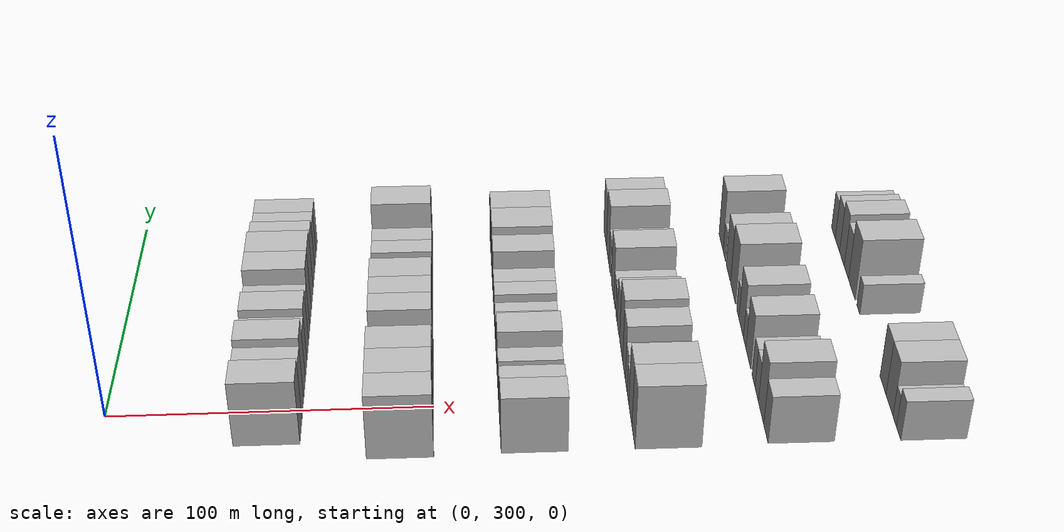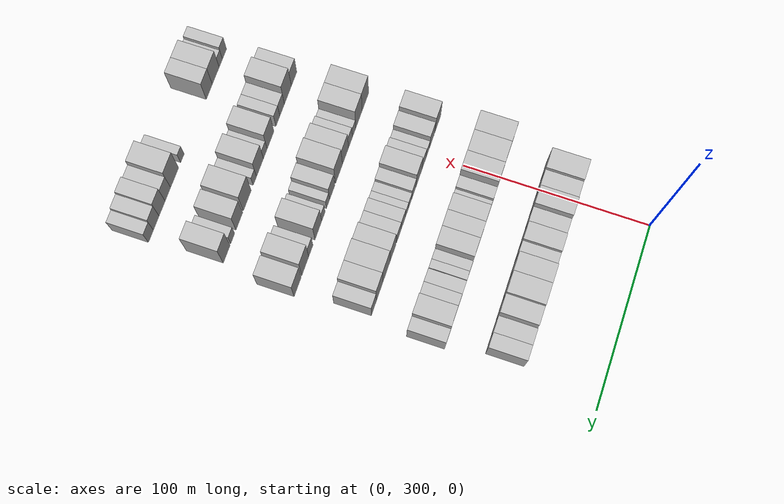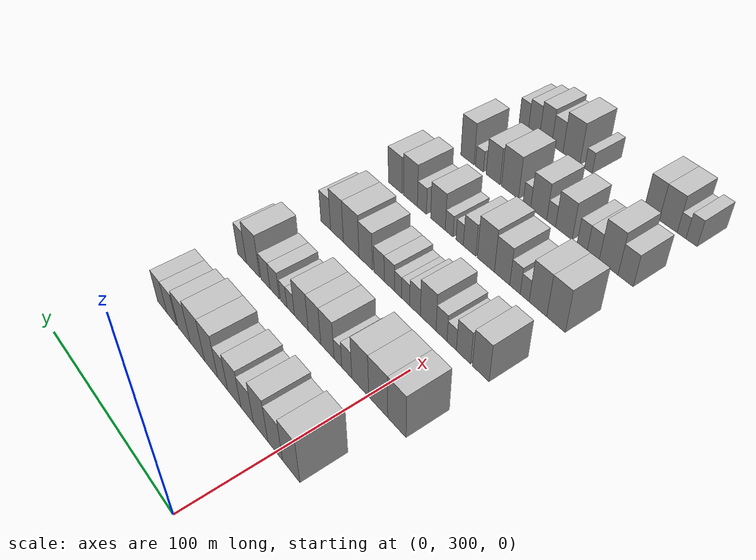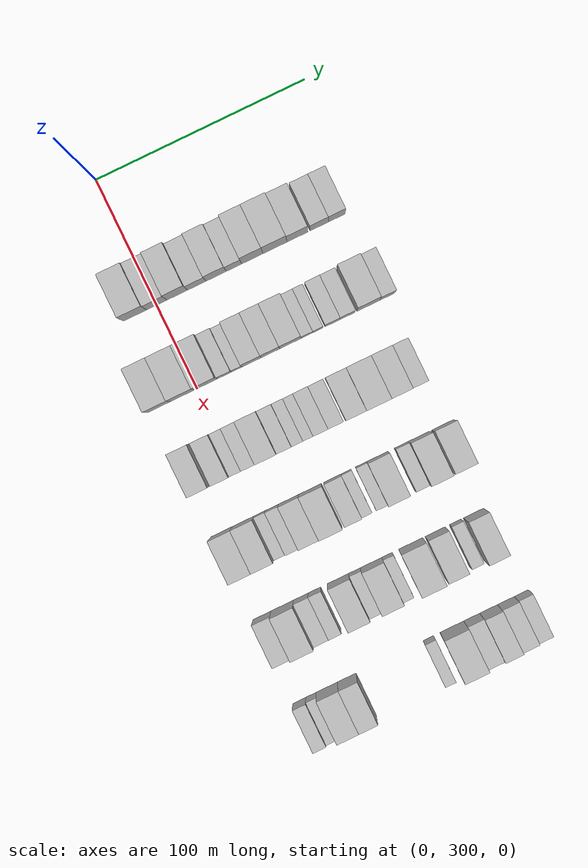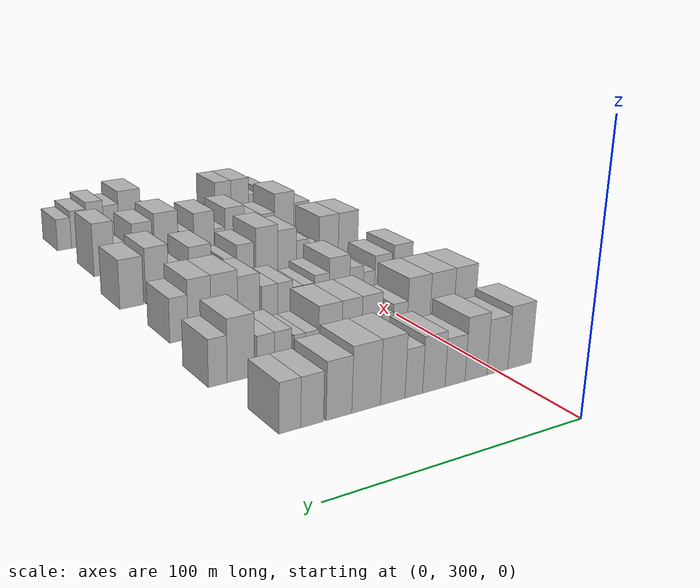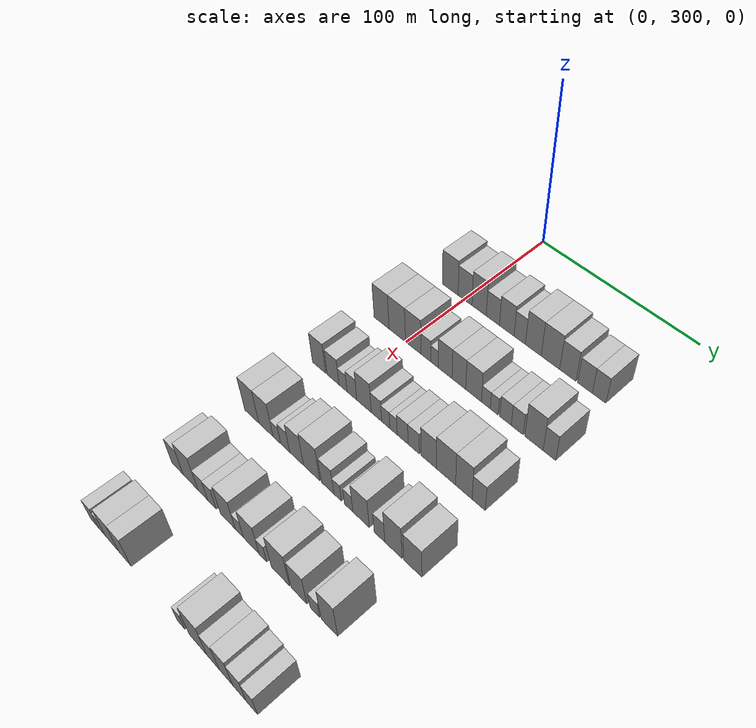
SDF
<sdf version="1.6">
 <world name="default">
  <model name="building_99">
   <static>1</static>
   <pose>50.0000 290.0214 0 0.000000 0.000000 0.000000</pose>
   <link name="link">
    <pose>0 0 12.00 0 0 0</pose>
    <collision name="collision"><geometry><box><size>20.0000 11.0654 24.0000</size></box></geometry></collision>
    <visual name="visual">
     <cast_shadows>0</cast_shadows>
     <geometry><box><size>20.0000 11.0654 24.0000</size></box></geometry>
     <material>
      <script>
       <uri>model://HANNAS_wall/materials/scripts</uri>
       <uri>model://HANNAS_wall/materials/textures</uri>
       <name>vrc/HANNAS_wall</name>
      </script>
     </material>
    </visual>
   </link>
  </model>
  <model name="building_100">
   <static>1</static>
   <pose>50.0000 300.3702 0 0.000000 0.000000 0.000000</pose>
   <link name="link">
    <pose>0 0 10.50 0 0 0</pose>
    <collision name="collision"><geometry><box><size>20.0000 9.6322 21.0000</size></box></geometry></collision>
    <visual name="visual">
     <cast_shadows>0</cast_shadows>
     <geometry><box><size>20.0000 9.6322 21.0000</size></box></geometry>
     <material>
      <script>
       <uri>model://HANNAS_wall/materials/scripts</uri>
       <uri>model://HANNAS_wall/materials/textures</uri>
       <name>vrc/HANNAS_wall</name>
      </script>
     </material>
    </visual>
   </link>
  </model>
  <model name="building_101">
   <static>1</static>
   <pose>50.0000 310.1109 0 0.000000 0.000000 0.000000</pose>
   <link name="link">
    <pose>0 0 12.00 0 0 0</pose>
    <collision name="collision"><geometry><box><size>20.0000 9.8493 24.0000</size></box></geometry></collision>
    <visual name="visual">
     <cast_shadows>0</cast_shadows>
     <geometry><box><size>20.0000 9.8493 24.0000</size></box></geometry>
     <material>
      <script>
       <uri>model://HANNAS_wall/materials/scripts</uri>
       <uri>model://HANNAS_wall/materials/textures</uri>
       <name>vrc/HANNAS_wall</name>
      </script>
     </material>
    </visual>
   </link>
  </model>
  <model name="building_102">
   <static>1</static>
   <pose>50.0000 319.4503 0 0.000000 0.000000 0.000000</pose>
   <link name="link">
    <pose>0 0 9.00 0 0 0</pose>
    <collision name="collision"><geometry><box><size>20.0000 8.8294 18.0000</size></box></geometry></collision>
    <visual name="visual">
     <cast_shadows>0</cast_shadows>
     <geometry><box><size>20.0000 8.8294 18.0000</size></box></geometry>
     <material>
      <script>
       <uri>model://HANNAS_wall/materials/scripts</uri>
       <uri>model://HANNAS_wall/materials/textures</uri>
       <name>vrc/HANNAS_wall</name>
      </script>
     </material>
    </visual>
   </link>
  </model>
  <model name="building_103">
   <static>1</static>
   <pose>50.0000 328.6968 0 0.000000 0.000000 0.000000</pose>
   <link name="link">
    <pose>0 0 10.50 0 0 0</pose>
    <collision name="collision"><geometry><box><size>20.0000 9.6636 21.0000</size></box></geometry></collision>
    <visual name="visual">
     <cast_shadows>0</cast_shadows>
     <geometry><box><size>20.0000 9.6636 21.0000</size></box></geometry>
     <material>
      <script>
       <uri>model://HANNAS_wall/materials/scripts</uri>
       <uri>model://HANNAS_wall/materials/textures</uri>
       <name>vrc/HANNAS_wall</name>
      </script>
     </material>
    </visual>
   </link>
  </model>
  <model name="building_104">
   <static>1</static>
   <pose>50.0000 337.2202 0 0.000000 0.000000 0.000000</pose>
   <link name="link">
    <pose>0 0 9.00 0 0 0</pose>
    <collision name="collision"><geometry><box><size>20.0000 7.3831 18.0000</size></box></geometry></collision>
    <visual name="visual">
     <cast_shadows>0</cast_shadows>
     <geometry><box><size>20.0000 7.3831 18.0000</size></box></geometry>
     <material>
      <script>
       <uri>model://HANNAS_wall/materials/scripts</uri>
       <uri>model://HANNAS_wall/materials/textures</uri>
       <name>vrc/HANNAS_wall</name>
      </script>
     </material>
    </visual>
   </link>
  </model>
  <model name="building_105">
   <static>1</static>
   <pose>50.0000 345.9678 0 0.000000 0.000000 0.000000</pose>
   <link name="link">
    <pose>0 0 12.00 0 0 0</pose>
    <collision name="collision"><geometry><box><size>20.0000 10.1121 24.0000</size></box></geometry></collision>
    <visual name="visual">
     <cast_shadows>0</cast_shadows>
     <geometry><box><size>20.0000 10.1121 24.0000</size></box></geometry>
     <material>
      <script>
       <uri>model://HANNAS_wall/materials/scripts</uri>
       <uri>model://HANNAS_wall/materials/textures</uri>
       <name>vrc/HANNAS_wall</name>
      </script>
     </material>
    </visual>
   </link>
  </model>
  <model name="building_106">
   <static>1</static>
   <pose>50.0000 356.7707 0 0.000000 0.000000 0.000000</pose>
   <link name="link">
    <pose>0 0 12.00 0 0 0</pose>
    <collision name="collision"><geometry><box><size>20.0000 11.4938 24.0000</size></box></geometry></collision>
    <visual name="visual">
     <cast_shadows>0</cast_shadows>
     <geometry><box><size>20.0000 11.4938 24.0000</size></box></geometry>
     <material>
      <script>
       <uri>model://HANNAS_wall/materials/scripts</uri>
       <uri>model://HANNAS_wall/materials/textures</uri>
       <name>vrc/HANNAS_wall</name>
      </script>
     </material>
    </visual>
   </link>
  </model>
  <model name="building_107">
   <static>1</static>
   <pose>50.0000 367.5145 0 0.000000 0.000000 0.000000</pose>
   <link name="link">
    <pose>0 0 10.50 0 0 0</pose>
    <collision name="collision"><geometry><box><size>20.0000 9.9939 21.0000</size></box></geometry></collision>
    <visual name="visual">
     <cast_shadows>0</cast_shadows>
     <geometry><box><size>20.0000 9.9939 21.0000</size></box></geometry>
     <material>
      <script>
       <uri>model://HANNAS_wall/materials/scripts</uri>
       <uri>model://HANNAS_wall/materials/textures</uri>
       <name>vrc/HANNAS_wall</name>
      </script>
     </material>
    </visual>
   </link>
  </model>
  <model name="building_108">
   <static>1</static>
   <pose>50.0000 377.8642 0 0.000000 0.000000 0.000000</pose>
   <link name="link">
    <pose>0 0 9.00 0 0 0</pose>
    <collision name="collision"><geometry><box><size>20.0000 8.7056 18.0000</size></box></geometry></collision>
    <visual name="visual">
     <cast_shadows>0</cast_shadows>
     <geometry><box><size>20.0000 8.7056 18.0000</size></box></geometry>
     <material>
      <script>
       <uri>model://HANNAS_wall/materials/scripts</uri>
       <uri>model://HANNAS_wall/materials/textures</uri>
       <name>vrc/HANNAS_wall</name>
      </script>
     </material>
    </visual>
   </link>
  </model>
  <model name="building_109">
   <static>1</static>
   <pose>50.0000 386.2492 0 0.000000 0.000000 0.000000</pose>
   <link name="link">
    <pose>0 0 9.00 0 0 0</pose>
    <collision name="collision"><geometry><box><size>20.0000 8.0644 18.0000</size></box></geometry></collision>
    <visual name="visual">
     <cast_shadows>0</cast_shadows>
     <geometry><box><size>20.0000 8.0644 18.0000</size></box></geometry>
     <material>
      <script>
       <uri>model://HANNAS_wall/materials/scripts</uri>
       <uri>model://HANNAS_wall/materials/textures</uri>
       <name>vrc/HANNAS_wall</name>
      </script>
     </material>
    </visual>
   </link>
  </model>
  <model name="building_230">
   <static>1</static>
   <pose>90.0000 282.3566 0 0.000000 0.000000 0.000000</pose>
   <link name="link">
    <pose>0 0 12.00 0 0 0</pose>
    <collision name="collision"><geometry><box><size>20.0000 10.8236 24.0000</size></box></geometry></collision>
    <visual name="visual">
     <cast_shadows>0</cast_shadows>
     <geometry><box><size>20.0000 10.8236 24.0000</size></box></geometry>
     <material>
      <script>
       <uri>model://HANNAS_wall/materials/scripts</uri>
       <uri>model://HANNAS_wall/materials/textures</uri>
       <name>vrc/HANNAS_wall</name>
      </script>
     </material>
    </visual>
   </link>
  </model>
  <model name="building_231">
   <static>1</static>
   <pose>90.0000 293.5925 0 0.000000 0.000000 0.000000</pose>
   <link name="link">
    <pose>0 0 12.00 0 0 0</pose>
    <collision name="collision"><geometry><box><size>20.0000 11.6481 24.0000</size></box></geometry></collision>
    <visual name="visual">
     <cast_shadows>0</cast_shadows>
     <geometry><box><size>20.0000 11.6481 24.0000</size></box></geometry>
     <material>
      <script>
       <uri>model://HANNAS_wall/materials/scripts</uri>
       <uri>model://HANNAS_wall/materials/textures</uri>
       <name>vrc/HANNAS_wall</name>
      </script>
     </material>
    </visual>
   </link>
  </model>
  <model name="building_232">
   <static>1</static>
   <pose>90.0000 304.8099 0 0.000000 0.000000 0.000000</pose>
   <link name="link">
    <pose>0 0 12.00 0 0 0</pose>
    <collision name="collision"><geometry><box><size>20.0000 10.7867 24.0000</size></box></geometry></collision>
    <visual name="visual">
     <cast_shadows>0</cast_shadows>
     <geometry><box><size>20.0000 10.7867 24.0000</size></box></geometry>
     <material>
      <script>
       <uri>model://HANNAS_wall/materials/scripts</uri>
       <uri>model://HANNAS_wall/materials/textures</uri>
       <name>vrc/HANNAS_wall</name>
      </script>
     </material>
    </visual>
   </link>
  </model>
  <model name="building_233">
   <static>1</static>
   <pose>90.0000 313.5280 0 0.000000 0.000000 0.000000</pose>
   <link name="link">
    <pose>0 0 7.50 0 0 0</pose>
    <collision name="collision"><geometry><box><size>20.0000 6.6495 15.0000</size></box></geometry></collision>
    <visual name="visual">
     <cast_shadows>0</cast_shadows>
     <geometry><box><size>20.0000 6.6495 15.0000</size></box></geometry>
     <material>
      <script>
       <uri>model://HANNAS_wall/materials/scripts</uri>
       <uri>model://HANNAS_wall/materials/textures</uri>
       <name>vrc/HANNAS_wall</name>
      </script>
     </material>
    </visual>
   </link>
  </model>
  <model name="building_234">
   <static>1</static>
   <pose>90.0000 319.3764 0 0.000000 0.000000 0.000000</pose>
   <link name="link">
    <pose>0 0 6.00 0 0 0</pose>
    <collision name="collision"><geometry><box><size>20.0000 5.0474 12.0000</size></box></geometry></collision>
    <visual name="visual">
     <cast_shadows>0</cast_shadows>
     <geometry><box><size>20.0000 5.0474 12.0000</size></box></geometry>
     <material>
      <script>
       <uri>model://HANNAS_wall/materials/scripts</uri>
       <uri>model://HANNAS_wall/materials/textures</uri>
       <name>vrc/HANNAS_wall</name>
      </script>
     </material>
    </visual>
   </link>
  </model>
  <model name="building_235">
   <static>1</static>
   <pose>90.0000 326.4579 0 0.000000 0.000000 0.000000</pose>
   <link name="link">
    <pose>0 0 10.50 0 0 0</pose>
    <collision name="collision"><geometry><box><size>20.0000 9.1156 21.0000</size></box></geometry></collision>
    <visual name="visual">
     <cast_shadows>0</cast_shadows>
     <geometry><box><size>20.0000 9.1156 21.0000</size></box></geometry>
     <material>
      <script>
       <uri>model://HANNAS_wall/materials/scripts</uri>
       <uri>model://HANNAS_wall/materials/textures</uri>
       <name>vrc/HANNAS_wall</name>
      </script>
     </material>
    </visual>
   </link>
  </model>
  <model name="building_236">
   <static>1</static>
   <pose>90.0000 335.4379 0 0.000000 0.000000 0.000000</pose>
   <link name="link">
    <pose>0 0 10.50 0 0 0</pose>
    <collision name="collision"><geometry><box><size>20.0000 8.8444 21.0000</size></box></geometry></collision>
    <visual name="visual">
     <cast_shadows>0</cast_shadows>
     <geometry><box><size>20.0000 8.8444 21.0000</size></box></geometry>
     <material>
      <script>
       <uri>model://HANNAS_wall/materials/scripts</uri>
       <uri>model://HANNAS_wall/materials/textures</uri>
       <name>vrc/HANNAS_wall</name>
      </script>
     </material>
    </visual>
   </link>
  </model>
  <model name="building_237">
   <static>1</static>
   <pose>90.0000 344.8857 0 0.000000 0.000000 0.000000</pose>
   <link name="link">
    <pose>0 0 10.50 0 0 0</pose>
    <collision name="collision"><geometry><box><size>20.0000 10.0512 21.0000</size></box></geometry></collision>
    <visual name="visual">
     <cast_shadows>0</cast_shadows>
     <geometry><box><size>20.0000 10.0512 21.0000</size></box></geometry>
     <material>
      <script>
       <uri>model://HANNAS_wall/materials/scripts</uri>
       <uri>model://HANNAS_wall/materials/textures</uri>
       <name>vrc/HANNAS_wall</name>
      </script>
     </material>
    </visual>
   </link>
  </model>
  <model name="building_238">
   <static>1</static>
   <pose>90.0000 352.6964 0 0.000000 0.000000 0.000000</pose>
   <link name="link">
    <pose>0 0 6.00 0 0 0</pose>
    <collision name="collision"><geometry><box><size>20.0000 5.5702 12.0000</size></box></geometry></collision>
    <visual name="visual">
     <cast_shadows>0</cast_shadows>
     <geometry><box><size>20.0000 5.5702 12.0000</size></box></geometry>
     <material>
      <script>
       <uri>model://HANNAS_wall/materials/scripts</uri>
       <uri>model://HANNAS_wall/materials/textures</uri>
       <name>vrc/HANNAS_wall</name>
      </script>
     </material>
    </visual>
   </link>
  </model>
  <model name="building_239">
   <static>1</static>
   <pose>90.0000 357.8881 0 0.000000 0.000000 0.000000</pose>
   <link name="link">
    <pose>0 0 6.00 0 0 0</pose>
    <collision name="collision"><geometry><box><size>20.0000 4.8131 12.0000</size></box></geometry></collision>
    <visual name="visual">
     <cast_shadows>0</cast_shadows>
     <geometry><box><size>20.0000 4.8131 12.0000</size></box></geometry>
     <material>
      <script>
       <uri>model://HANNAS_wall/materials/scripts</uri>
       <uri>model://HANNAS_wall/materials/textures</uri>
       <name>vrc/HANNAS_wall</name>
      </script>
     </material>
    </visual>
   </link>
  </model>
  <model name="building_240">
   <static>1</static>
   <pose>90.0000 364.8389 0 0.000000 0.000000 0.000000</pose>
   <link name="link">
    <pose>0 0 7.50 0 0 0</pose>
    <collision name="collision"><geometry><box><size>20.0000 7.0885 15.0000</size></box></geometry></collision>
    <visual name="visual">
     <cast_shadows>0</cast_shadows>
     <geometry><box><size>20.0000 7.0885 15.0000</size></box></geometry>
     <material>
      <script>
       <uri>model://HANNAS_wall/materials/scripts</uri>
       <uri>model://HANNAS_wall/materials/textures</uri>
       <name>vrc/HANNAS_wall</name>
      </script>
     </material>
    </visual>
   </link>
  </model>
  <model name="building_241">
   <static>1</static>
   <pose>90.0000 371.9680 0 0.000000 0.000000 0.000000</pose>
   <link name="link">
    <pose>0 0 7.50 0 0 0</pose>
    <collision name="collision"><geometry><box><size>20.0000 7.1696 15.0000</size></box></geometry></collision>
    <visual name="visual">
     <cast_shadows>0</cast_shadows>
     <geometry><box><size>20.0000 7.1696 15.0000</size></box></geometry>
     <material>
      <script>
       <uri>model://HANNAS_wall/materials/scripts</uri>
       <uri>model://HANNAS_wall/materials/textures</uri>
       <name>vrc/HANNAS_wall</name>
      </script>
     </material>
    </visual>
   </link>
  </model>
  <model name="building_242">
   <static>1</static>
   <pose>90.0000 381.9496 0 0.000000 0.000000 0.000000</pose>
   <link name="link">
    <pose>0 0 12.00 0 0 0</pose>
    <collision name="collision"><geometry><box><size>20.0000 10.7937 24.0000</size></box></geometry></collision>
    <visual name="visual">
     <cast_shadows>0</cast_shadows>
     <geometry><box><size>20.0000 10.7937 24.0000</size></box></geometry>
     <material>
      <script>
       <uri>model://HANNAS_wall/materials/scripts</uri>
       <uri>model://HANNAS_wall/materials/textures</uri>
       <name>vrc/HANNAS_wall</name>
      </script>
     </material>
    </visual>
   </link>
  </model>
  <model name="building_243">
   <static>1</static>
   <pose>90.0000 391.0042 0 0.000000 0.000000 0.000000</pose>
   <link name="link">
    <pose>0 0 9.00 0 0 0</pose>
    <collision name="collision"><geometry><box><size>20.0000 7.3155 18.0000</size></box></geometry></collision>
    <visual name="visual">
     <cast_shadows>0</cast_shadows>
     <geometry><box><size>20.0000 7.3155 18.0000</size></box></geometry>
     <material>
      <script>
       <uri>model://HANNAS_wall/materials/scripts</uri>
       <uri>model://HANNAS_wall/materials/textures</uri>
       <name>vrc/HANNAS_wall</name>
      </script>
     </material>
    </visual>
   </link>
  </model>
  <model name="building_361">
   <static>1</static>
   <pose>130.0000 282.5466 0 0.000000 0.000000 0.000000</pose>
   <link name="link">
    <pose>0 0 10.50 0 0 0</pose>
    <collision name="collision"><geometry><box><size>20.0000 9.6166 21.0000</size></box></geometry></collision>
    <visual name="visual">
     <cast_shadows>0</cast_shadows>
     <geometry><box><size>20.0000 9.6166 21.0000</size></box></geometry>
     <material>
      <script>
       <uri>model://HANNAS_wall/materials/scripts</uri>
       <uri>model://HANNAS_wall/materials/textures</uri>
       <name>vrc/HANNAS_wall</name>
      </script>
     </material>
    </visual>
   </link>
  </model>
  <model name="building_362">
   <static>1</static>
   <pose>130.0000 292.5879 0 0.000000 0.000000 0.000000</pose>
   <link name="link">
    <pose>0 0 9.00 0 0 0</pose>
    <collision name="collision"><geometry><box><size>20.0000 8.4659 18.0000</size></box></geometry></collision>
    <visual name="visual">
     <cast_shadows>0</cast_shadows>
     <geometry><box><size>20.0000 8.4659 18.0000</size></box></geometry>
     <material>
      <script>
       <uri>model://HANNAS_wall/materials/scripts</uri>
       <uri>model://HANNAS_wall/materials/textures</uri>
       <name>vrc/HANNAS_wall</name>
      </script>
     </material>
    </visual>
   </link>
  </model>
  <model name="building_363">
   <static>1</static>
   <pose>130.0000 299.6618 0 0.000000 0.000000 0.000000</pose>
   <link name="link">
    <pose>0 0 6.00 0 0 0</pose>
    <collision name="collision"><geometry><box><size>20.0000 5.6820 12.0000</size></box></geometry></collision>
    <visual name="visual">
     <cast_shadows>0</cast_shadows>
     <geometry><box><size>20.0000 5.6820 12.0000</size></box></geometry>
     <material>
      <script>
       <uri>model://HANNAS_wall/materials/scripts</uri>
       <uri>model://HANNAS_wall/materials/textures</uri>
       <name>vrc/HANNAS_wall</name>
      </script>
     </material>
    </visual>
   </link>
  </model>
  <model name="building_364">
   <static>1</static>
   <pose>130.0000 305.8872 0 0.000000 0.000000 0.000000</pose>
   <link name="link">
    <pose>0 0 7.50 0 0 0</pose>
    <collision name="collision"><geometry><box><size>20.0000 6.7688 15.0000</size></box></geometry></collision>
    <visual name="visual">
     <cast_shadows>0</cast_shadows>
     <geometry><box><size>20.0000 6.7688 15.0000</size></box></geometry>
     <material>
      <script>
       <uri>model://HANNAS_wall/materials/scripts</uri>
       <uri>model://HANNAS_wall/materials/textures</uri>
       <name>vrc/HANNAS_wall</name>
      </script>
     </material>
    </visual>
   </link>
  </model>
  <model name="building_365">
   <static>1</static>
   <pose>130.0000 314.2593 0 0.000000 0.000000 0.000000</pose>
   <link name="link">
    <pose>0 0 10.50 0 0 0</pose>
    <collision name="collision"><geometry><box><size>20.0000 9.9754 21.0000</size></box></geometry></collision>
    <visual name="visual">
     <cast_shadows>0</cast_shadows>
     <geometry><box><size>20.0000 9.9754 21.0000</size></box></geometry>
     <material>
      <script>
       <uri>model://HANNAS_wall/materials/scripts</uri>
       <uri>model://HANNAS_wall/materials/textures</uri>
       <name>vrc/HANNAS_wall</name>
      </script>
     </material>
    </visual>
   </link>
  </model>
  <model name="building_366">
   <static>1</static>
   <pose>130.0000 322.7121 0 0.000000 0.000000 0.000000</pose>
   <link name="link">
    <pose>0 0 7.50 0 0 0</pose>
    <collision name="collision"><geometry><box><size>20.0000 6.9302 15.0000</size></box></geometry></collision>
    <visual name="visual">
     <cast_shadows>0</cast_shadows>
     <geometry><box><size>20.0000 6.9302 15.0000</size></box></geometry>
     <material>
      <script>
       <uri>model://HANNAS_wall/materials/scripts</uri>
       <uri>model://HANNAS_wall/materials/textures</uri>
       <name>vrc/HANNAS_wall</name>
      </script>
     </material>
    </visual>
   </link>
  </model>
  <model name="building_367">
   <static>1</static>
   <pose>130.0000 328.8604 0 0.000000 0.000000 0.000000</pose>
   <link name="link">
    <pose>0 0 6.00 0 0 0</pose>
    <collision name="collision"><geometry><box><size>20.0000 5.3665 12.0000</size></box></geometry></collision>
    <visual name="visual">
     <cast_shadows>0</cast_shadows>
     <geometry><box><size>20.0000 5.3665 12.0000</size></box></geometry>
     <material>
      <script>
       <uri>model://HANNAS_wall/materials/scripts</uri>
       <uri>model://HANNAS_wall/materials/textures</uri>
       <name>vrc/HANNAS_wall</name>
      </script>
     </material>
    </visual>
   </link>
  </model>
  <model name="building_368">
   <static>1</static>
   <pose>130.0000 333.9699 0 0.000000 0.000000 0.000000</pose>
   <link name="link">
    <pose>0 0 6.00 0 0 0</pose>
    <collision name="collision"><geometry><box><size>20.0000 4.8523 12.0000</size></box></geometry></collision>
    <visual name="visual">
     <cast_shadows>0</cast_shadows>
     <geometry><box><size>20.0000 4.8523 12.0000</size></box></geometry>
     <material>
      <script>
       <uri>model://HANNAS_wall/materials/scripts</uri>
       <uri>model://HANNAS_wall/materials/textures</uri>
       <name>vrc/HANNAS_wall</name>
      </script>
     </material>
    </visual>
   </link>
  </model>
  <model name="building_369">
   <static>1</static>
   <pose>130.0000 339.8920 0 0.000000 0.000000 0.000000</pose>
   <link name="link">
    <pose>0 0 7.50 0 0 0</pose>
    <collision name="collision"><geometry><box><size>20.0000 6.9919 15.0000</size></box></geometry></collision>
    <visual name="visual">
     <cast_shadows>0</cast_shadows>
     <geometry><box><size>20.0000 6.9919 15.0000</size></box></geometry>
     <material>
      <script>
       <uri>model://HANNAS_wall/materials/scripts</uri>
       <uri>model://HANNAS_wall/materials/textures</uri>
       <name>vrc/HANNAS_wall</name>
      </script>
     </material>
    </visual>
   </link>
  </model>
  <model name="building_370">
   <static>1</static>
   <pose>130.0000 347.0036 0 0.000000 0.000000 0.000000</pose>
   <link name="link">
    <pose>0 0 7.50 0 0 0</pose>
    <collision name="collision"><geometry><box><size>20.0000 7.2315 15.0000</size></box></geometry></collision>
    <visual name="visual">
     <cast_shadows>0</cast_shadows>
     <geometry><box><size>20.0000 7.2315 15.0000</size></box></geometry>
     <material>
      <script>
       <uri>model://HANNAS_wall/materials/scripts</uri>
       <uri>model://HANNAS_wall/materials/textures</uri>
       <name>vrc/HANNAS_wall</name>
      </script>
     </material>
    </visual>
   </link>
  </model>
  <model name="building_371">
   <static>1</static>
   <pose>130.0000 356.4457 0 0.000000 0.000000 0.000000</pose>
   <link name="link">
    <pose>0 0 10.50 0 0 0</pose>
    <collision name="collision"><geometry><box><size>20.0000 9.6526 21.0000</size></box></geometry></collision>
    <visual name="visual">
     <cast_shadows>0</cast_shadows>
     <geometry><box><size>20.0000 9.6526 21.0000</size></box></geometry>
     <material>
      <script>
       <uri>model://HANNAS_wall/materials/scripts</uri>
       <uri>model://HANNAS_wall/materials/textures</uri>
       <name>vrc/HANNAS_wall</name>
      </script>
     </material>
    </visual>
   </link>
  </model>
  <model name="building_372">
   <static>1</static>
   <pose>130.0000 367.0536 0 0.000000 0.000000 0.000000</pose>
   <link name="link">
    <pose>0 0 12.00 0 0 0</pose>
    <collision name="collision"><geometry><box><size>20.0000 11.5632 24.0000</size></box></geometry></collision>
    <visual name="visual">
     <cast_shadows>0</cast_shadows>
     <geometry><box><size>20.0000 11.5632 24.0000</size></box></geometry>
     <material>
      <script>
       <uri>model://HANNAS_wall/materials/scripts</uri>
       <uri>model://HANNAS_wall/materials/textures</uri>
       <name>vrc/HANNAS_wall</name>
      </script>
     </material>
    </visual>
   </link>
  </model>
  <model name="building_373">
   <static>1</static>
   <pose>130.0000 377.7440 0 0.000000 0.000000 0.000000</pose>
   <link name="link">
    <pose>0 0 12.00 0 0 0</pose>
    <collision name="collision"><geometry><box><size>20.0000 9.8177 24.0000</size></box></geometry></collision>
    <visual name="visual">
     <cast_shadows>0</cast_shadows>
     <geometry><box><size>20.0000 9.8177 24.0000</size></box></geometry>
     <material>
      <script>
       <uri>model://HANNAS_wall/materials/scripts</uri>
       <uri>model://HANNAS_wall/materials/textures</uri>
       <name>vrc/HANNAS_wall</name>
      </script>
     </material>
    </visual>
   </link>
  </model>
  <model name="building_374">
   <static>1</static>
   <pose>130.0000 386.4704 0 0.000000 0.000000 0.000000</pose>
   <link name="link">
    <pose>0 0 9.00 0 0 0</pose>
    <collision name="collision"><geometry><box><size>20.0000 7.6351 18.0000</size></box></geometry></collision>
    <visual name="visual">
     <cast_shadows>0</cast_shadows>
     <geometry><box><size>20.0000 7.6351 18.0000</size></box></geometry>
     <material>
      <script>
       <uri>model://HANNAS_wall/materials/scripts</uri>
       <uri>model://HANNAS_wall/materials/textures</uri>
       <name>vrc/HANNAS_wall</name>
      </script>
     </material>
    </visual>
   </link>
  </model>
  <model name="building_500">
   <static>1</static>
   <pose>170.0000 283.0354 0 0.000000 0.000000 0.000000</pose>
   <link name="link">
    <pose>0 0 12.00 0 0 0</pose>
    <collision name="collision"><geometry><box><size>20.0000 10.4666 24.0000</size></box></geometry></collision>
    <visual name="visual">
     <cast_shadows>0</cast_shadows>
     <geometry><box><size>20.0000 10.4666 24.0000</size></box></geometry>
     <material>
      <script>
       <uri>model://HANNAS_wall/materials/scripts</uri>
       <uri>model://HANNAS_wall/materials/textures</uri>
       <name>vrc/HANNAS_wall</name>
      </script>
     </material>
    </visual>
   </link>
  </model>
  <model name="building_501">
   <static>1</static>
   <pose>170.0000 293.3699 0 0.000000 0.000000 0.000000</pose>
   <link name="link">
    <pose>0 0 12.00 0 0 0</pose>
    <collision name="collision"><geometry><box><size>20.0000 10.2024 24.0000</size></box></geometry></collision>
    <visual name="visual">
     <cast_shadows>0</cast_shadows>
     <geometry><box><size>20.0000 10.2024 24.0000</size></box></geometry>
     <material>
      <script>
       <uri>model://HANNAS_wall/materials/scripts</uri>
       <uri>model://HANNAS_wall/materials/textures</uri>
       <name>vrc/HANNAS_wall</name>
      </script>
     </material>
    </visual>
   </link>
  </model>
  <model name="building_502">
   <static>1</static>
   <pose>170.0000 301.1593 0 0.000000 0.000000 0.000000</pose>
   <link name="link">
    <pose>0 0 6.00 0 0 0</pose>
    <collision name="collision"><geometry><box><size>20.0000 5.3764 12.0000</size></box></geometry></collision>
    <visual name="visual">
     <cast_shadows>0</cast_shadows>
     <geometry><box><size>20.0000 5.3764 12.0000</size></box></geometry>
     <material>
      <script>
       <uri>model://HANNAS_wall/materials/scripts</uri>
       <uri>model://HANNAS_wall/materials/textures</uri>
       <name>vrc/HANNAS_wall</name>
      </script>
     </material>
    </visual>
   </link>
  </model>
  <model name="building_503">
   <static>1</static>
   <pose>170.0000 306.9981 0 0.000000 0.000000 0.000000</pose>
   <link name="link">
    <pose>0 0 7.50 0 0 0</pose>
    <collision name="collision"><geometry><box><size>20.0000 6.3012 15.0000</size></box></geometry></collision>
    <visual name="visual">
     <cast_shadows>0</cast_shadows>
     <geometry><box><size>20.0000 6.3012 15.0000</size></box></geometry>
     <material>
      <script>
       <uri>model://HANNAS_wall/materials/scripts</uri>
       <uri>model://HANNAS_wall/materials/textures</uri>
       <name>vrc/HANNAS_wall</name>
      </script>
     </material>
    </visual>
   </link>
  </model>
  <model name="building_504">
   <static>1</static>
   <pose>170.0000 314.9082 0 0.000000 0.000000 0.000000</pose>
   <link name="link">
    <pose>0 0 10.50 0 0 0</pose>
    <collision name="collision"><geometry><box><size>20.0000 9.5188 21.0000</size></box></geometry></collision>
    <visual name="visual">
     <cast_shadows>0</cast_shadows>
     <geometry><box><size>20.0000 9.5188 21.0000</size></box></geometry>
     <material>
      <script>
       <uri>model://HANNAS_wall/materials/scripts</uri>
       <uri>model://HANNAS_wall/materials/textures</uri>
       <name>vrc/HANNAS_wall</name>
      </script>
     </material>
    </visual>
   </link>
  </model>
  <model name="building_505">
   <static>1</static>
   <pose>170.0000 325.1340 0 0.000000 0.000000 0.000000</pose>
   <link name="link">
    <pose>0 0 12.00 0 0 0</pose>
    <collision name="collision"><geometry><box><size>20.0000 10.9329 24.0000</size></box></geometry></collision>
    <visual name="visual">
     <cast_shadows>0</cast_shadows>
     <geometry><box><size>20.0000 10.9329 24.0000</size></box></geometry>
     <material>
      <script>
       <uri>model://HANNAS_wall/materials/scripts</uri>
       <uri>model://HANNAS_wall/materials/textures</uri>
       <name>vrc/HANNAS_wall</name>
      </script>
     </material>
    </visual>
   </link>
  </model>
  <model name="building_506">
   <static>1</static>
   <pose>170.0000 335.6960 0 0.000000 0.000000 0.000000</pose>
   <link name="link">
    <pose>0 0 9.00 0 0 0</pose>
    <collision name="collision"><geometry><box><size>20.0000 8.1911 18.0000</size></box></geometry></collision>
    <visual name="visual">
     <cast_shadows>0</cast_shadows>
     <geometry><box><size>20.0000 8.1911 18.0000</size></box></geometry>
     <material>
      <script>
       <uri>model://HANNAS_wall/materials/scripts</uri>
       <uri>model://HANNAS_wall/materials/textures</uri>
       <name>vrc/HANNAS_wall</name>
      </script>
     </material>
    </visual>
   </link>
  </model>
  <model name="building_507">
   <static>1</static>
   <pose>170.0000 342.2434 0 0.000000 0.000000 0.000000</pose>
   <link name="link">
    <pose>0 0 6.00 0 0 0</pose>
    <collision name="collision"><geometry><box><size>20.0000 4.9037 12.0000</size></box></geometry></collision>
    <visual name="visual">
     <cast_shadows>0</cast_shadows>
     <geometry><box><size>20.0000 4.9037 12.0000</size></box></geometry>
     <material>
      <script>
       <uri>model://HANNAS_wall/materials/scripts</uri>
       <uri>model://HANNAS_wall/materials/textures</uri>
       <name>vrc/HANNAS_wall</name>
      </script>
     </material>
    </visual>
   </link>
  </model>
  <model name="building_508">
   <static>1</static>
   <pose>170.0000 349.3628 0 0.000000 0.000000 0.000000</pose>
   <link name="link">
    <pose>0 0 6.00 0 0 0</pose>
    <collision name="collision"><geometry><box><size>20.0000 5.3351 12.0000</size></box></geometry></collision>
    <visual name="visual">
     <cast_shadows>0</cast_shadows>
     <geometry><box><size>20.0000 5.3351 12.0000</size></box></geometry>
     <material>
      <script>
       <uri>model://HANNAS_wall/materials/scripts</uri>
       <uri>model://HANNAS_wall/materials/textures</uri>
       <name>vrc/HANNAS_wall</name>
      </script>
     </material>
    </visual>
   </link>
  </model>
  <model name="building_509">
   <static>1</static>
   <pose>170.0000 357.1659 0 0.000000 0.000000 0.000000</pose>
   <link name="link">
    <pose>0 0 10.50 0 0 0</pose>
    <collision name="collision"><geometry><box><size>20.0000 10.2711 21.0000</size></box></geometry></collision>
    <visual name="visual">
     <cast_shadows>0</cast_shadows>
     <geometry><box><size>20.0000 10.2711 21.0000</size></box></geometry>
     <material>
      <script>
       <uri>model://HANNAS_wall/materials/scripts</uri>
       <uri>model://HANNAS_wall/materials/textures</uri>
       <name>vrc/HANNAS_wall</name>
      </script>
     </material>
    </visual>
   </link>
  </model>
  <model name="building_510">
   <static>1</static>
   <pose>170.0000 368.5321 0 0.000000 0.000000 0.000000</pose>
   <link name="link">
    <pose>0 0 7.50 0 0 0</pose>
    <collision name="collision"><geometry><box><size>20.0000 6.4614 15.0000</size></box></geometry></collision>
    <visual name="visual">
     <cast_shadows>0</cast_shadows>
     <geometry><box><size>20.0000 6.4614 15.0000</size></box></geometry>
     <material>
      <script>
       <uri>model://HANNAS_wall/materials/scripts</uri>
       <uri>model://HANNAS_wall/materials/textures</uri>
       <name>vrc/HANNAS_wall</name>
      </script>
     </material>
    </visual>
   </link>
  </model>
  <model name="building_511">
   <static>1</static>
   <pose>170.0000 376.9252 0 0.000000 0.000000 0.000000</pose>
   <link name="link">
    <pose>0 0 12.00 0 0 0</pose>
    <collision name="collision"><geometry><box><size>20.0000 10.3247 24.0000</size></box></geometry></collision>
    <visual name="visual">
     <cast_shadows>0</cast_shadows>
     <geometry><box><size>20.0000 10.3247 24.0000</size></box></geometry>
     <material>
      <script>
       <uri>model://HANNAS_wall/materials/scripts</uri>
       <uri>model://HANNAS_wall/materials/textures</uri>
       <name>vrc/HANNAS_wall</name>
      </script>
     </material>
    </visual>
   </link>
  </model>
  <model name="building_512">
   <static>1</static>
   <pose>170.0000 388.3297 0 0.000000 0.000000 0.000000</pose>
   <link name="link">
    <pose>0 0 10.50 0 0 0</pose>
    <collision name="collision"><geometry><box><size>20.0000 10.4843 21.0000</size></box></geometry></collision>
    <visual name="visual">
     <cast_shadows>0</cast_shadows>
     <geometry><box><size>20.0000 10.4843 21.0000</size></box></geometry>
     <material>
      <script>
       <uri>model://HANNAS_wall/materials/scripts</uri>
       <uri>model://HANNAS_wall/materials/textures</uri>
       <name>vrc/HANNAS_wall</name>
      </script>
     </material>
    </visual>
   </link>
  </model>
  <model name="building_641">
   <static>1</static>
   <pose>210.0000 282.8021 0 0.000000 0.000000 0.000000</pose>
   <link name="link">
    <pose>0 0 9.00 0 0 0</pose>
    <collision name="collision"><geometry><box><size>20.0000 8.4733 18.0000</size></box></geometry></collision>
    <visual name="visual">
     <cast_shadows>0</cast_shadows>
     <geometry><box><size>20.0000 8.4733 18.0000</size></box></geometry>
     <material>
      <script>
       <uri>model://HANNAS_wall/materials/scripts</uri>
       <uri>model://HANNAS_wall/materials/textures</uri>
       <name>vrc/HANNAS_wall</name>
      </script>
     </material>
    </visual>
   </link>
  </model>
  <model name="building_642">
   <static>1</static>
   <pose>210.0000 292.4196 0 0.000000 0.000000 0.000000</pose>
   <link name="link">
    <pose>0 0 12.00 0 0 0</pose>
    <collision name="collision"><geometry><box><size>20.0000 10.7617 24.0000</size></box></geometry></collision>
    <visual name="visual">
     <cast_shadows>0</cast_shadows>
     <geometry><box><size>20.0000 10.7617 24.0000</size></box></geometry>
     <material>
      <script>
       <uri>model://HANNAS_wall/materials/scripts</uri>
       <uri>model://HANNAS_wall/materials/textures</uri>
       <name>vrc/HANNAS_wall</name>
      </script>
     </material>
    </visual>
   </link>
  </model>
  <model name="building_643">
   <static>1</static>
   <pose>210.0000 301.3204 0 0.000000 0.000000 0.000000</pose>
   <link name="link">
    <pose>0 0 7.50 0 0 0</pose>
    <collision name="collision"><geometry><box><size>20.0000 7.0398 15.0000</size></box></geometry></collision>
    <visual name="visual">
     <cast_shadows>0</cast_shadows>
     <geometry><box><size>20.0000 7.0398 15.0000</size></box></geometry>
     <material>
      <script>
       <uri>model://HANNAS_wall/materials/scripts</uri>
       <uri>model://HANNAS_wall/materials/textures</uri>
       <name>vrc/HANNAS_wall</name>
      </script>
     </material>
    </visual>
   </link>
  </model>
  <model name="building_644">
   <static>1</static>
   <pose>210.0000 307.8623 0 0.000000 0.000000 0.000000</pose>
   <link name="link">
    <pose>0 0 7.50 0 0 0</pose>
    <collision name="collision"><geometry><box><size>20.0000 6.0440 15.0000</size></box></geometry></collision>
    <visual name="visual">
     <cast_shadows>0</cast_shadows>
     <geometry><box><size>20.0000 6.0440 15.0000</size></box></geometry>
     <material>
      <script>
       <uri>model://HANNAS_wall/materials/scripts</uri>
       <uri>model://HANNAS_wall/materials/textures</uri>
       <name>vrc/HANNAS_wall</name>
      </script>
     </material>
    </visual>
   </link>
  </model>
  <model name="building_645">
   <static>1</static>
   <pose>210.0000 319.0171 0 0.000000 0.000000 0.000000</pose>
   <link name="link">
    <pose>0 0 10.50 0 0 0</pose>
    <collision name="collision"><geometry><box><size>20.0000 10.2656 21.0000</size></box></geometry></collision>
    <visual name="visual">
     <cast_shadows>0</cast_shadows>
     <geometry><box><size>20.0000 10.2656 21.0000</size></box></geometry>
     <material>
      <script>
       <uri>model://HANNAS_wall/materials/scripts</uri>
       <uri>model://HANNAS_wall/materials/textures</uri>
       <name>vrc/HANNAS_wall</name>
      </script>
     </material>
    </visual>
   </link>
  </model>
  <model name="building_646">
   <static>1</static>
   <pose>210.0000 326.9465 0 0.000000 0.000000 0.000000</pose>
   <link name="link">
    <pose>0 0 6.00 0 0 0</pose>
    <collision name="collision"><geometry><box><size>20.0000 5.5932 12.0000</size></box></geometry></collision>
    <visual name="visual">
     <cast_shadows>0</cast_shadows>
     <geometry><box><size>20.0000 5.5932 12.0000</size></box></geometry>
     <material>
      <script>
       <uri>model://HANNAS_wall/materials/scripts</uri>
       <uri>model://HANNAS_wall/materials/textures</uri>
       <name>vrc/HANNAS_wall</name>
      </script>
     </material>
    </visual>
   </link>
  </model>
  <model name="building_647">
   <static>1</static>
   <pose>210.0000 334.9183 0 0.000000 0.000000 0.000000</pose>
   <link name="link">
    <pose>0 0 10.50 0 0 0</pose>
    <collision name="collision"><geometry><box><size>20.0000 10.3504 21.0000</size></box></geometry></collision>
    <visual name="visual">
     <cast_shadows>0</cast_shadows>
     <geometry><box><size>20.0000 10.3504 21.0000</size></box></geometry>
     <material>
      <script>
       <uri>model://HANNAS_wall/materials/scripts</uri>
       <uri>model://HANNAS_wall/materials/textures</uri>
       <name>vrc/HANNAS_wall</name>
      </script>
     </material>
    </visual>
   </link>
  </model>
  <model name="building_648">
   <static>1</static>
   <pose>210.0000 342.5754 0 0.000000 0.000000 0.000000</pose>
   <link name="link">
    <pose>0 0 6.00 0 0 0</pose>
    <collision name="collision"><geometry><box><size>20.0000 4.9638 12.0000</size></box></geometry></collision>
    <visual name="visual">
     <cast_shadows>0</cast_shadows>
     <geometry><box><size>20.0000 4.9638 12.0000</size></box></geometry>
     <material>
      <script>
       <uri>model://HANNAS_wall/materials/scripts</uri>
       <uri>model://HANNAS_wall/materials/textures</uri>
       <name>vrc/HANNAS_wall</name>
      </script>
     </material>
    </visual>
   </link>
  </model>
  <model name="building_649">
   <static>1</static>
   <pose>210.0000 353.8650 0 0.000000 0.000000 0.000000</pose>
   <link name="link">
    <pose>0 0 12.00 0 0 0</pose>
    <collision name="collision"><geometry><box><size>20.0000 11.6154 24.0000</size></box></geometry></collision>
    <visual name="visual">
     <cast_shadows>0</cast_shadows>
     <geometry><box><size>20.0000 11.6154 24.0000</size></box></geometry>
     <material>
      <script>
       <uri>model://HANNAS_wall/materials/scripts</uri>
       <uri>model://HANNAS_wall/materials/textures</uri>
       <name>vrc/HANNAS_wall</name>
      </script>
     </material>
    </visual>
   </link>
  </model>
  <model name="building_650">
   <static>1</static>
   <pose>210.0000 365.5082 0 0.000000 0.000000 0.000000</pose>
   <link name="link">
    <pose>0 0 10.50 0 0 0</pose>
    <collision name="collision"><geometry><box><size>20.0000 9.6709 21.0000</size></box></geometry></collision>
    <visual name="visual">
     <cast_shadows>0</cast_shadows>
     <geometry><box><size>20.0000 9.6709 21.0000</size></box></geometry>
     <material>
      <script>
       <uri>model://HANNAS_wall/materials/scripts</uri>
       <uri>model://HANNAS_wall/materials/textures</uri>
       <name>vrc/HANNAS_wall</name>
      </script>
     </material>
    </visual>
   </link>
  </model>
  <model name="building_651">
   <static>1</static>
   <pose>210.0000 375.1922 0 0.000000 0.000000 0.000000</pose>
   <link name="link">
    <pose>0 0 6.00 0 0 0</pose>
    <collision name="collision"><geometry><box><size>20.0000 5.6970 12.0000</size></box></geometry></collision>
    <visual name="visual">
     <cast_shadows>0</cast_shadows>
     <geometry><box><size>20.0000 5.6970 12.0000</size></box></geometry>
     <material>
      <script>
       <uri>model://HANNAS_wall/materials/scripts</uri>
       <uri>model://HANNAS_wall/materials/textures</uri>
       <name>vrc/HANNAS_wall</name>
      </script>
     </material>
    </visual>
   </link>
  </model>
  <model name="building_652">
   <static>1</static>
   <pose>210.0000 383.8949 0 0.000000 0.000000 0.000000</pose>
   <link name="link">
    <pose>0 0 12.00 0 0 0</pose>
    <collision name="collision"><geometry><box><size>20.0000 9.7085 24.0000</size></box></geometry></collision>
    <visual name="visual">
     <cast_shadows>0</cast_shadows>
     <geometry><box><size>20.0000 9.7085 24.0000</size></box></geometry>
     <material>
      <script>
       <uri>model://HANNAS_wall/materials/scripts</uri>
       <uri>model://HANNAS_wall/materials/textures</uri>
       <name>vrc/HANNAS_wall</name>
      </script>
     </material>
    </visual>
   </link>
  </model>
  <model name="building_775">
   <static>1</static>
   <pose>250.0000 281.2553 0 0.000000 0.000000 0.000000</pose>
   <link name="link">
    <pose>0 0 7.50 0 0 0</pose>
    <collision name="collision"><geometry><box><size>20.0000 6.2002 15.0000</size></box></geometry></collision>
    <visual name="visual">
     <cast_shadows>0</cast_shadows>
     <geometry><box><size>20.0000 6.2002 15.0000</size></box></geometry>
     <material>
      <script>
       <uri>model://HANNAS_wall/materials/scripts</uri>
       <uri>model://HANNAS_wall/materials/textures</uri>
       <name>vrc/HANNAS_wall</name>
      </script>
     </material>
    </visual>
   </link>
  </model>
  <model name="building_776">
   <static>1</static>
   <pose>250.0000 286.8229 0 0.000000 0.000000 0.000000</pose>
   <link name="link">
    <pose>0 0 6.00 0 0 0</pose>
    <collision name="collision"><geometry><box><size>20.0000 4.9350 12.0000</size></box></geometry></collision>
    <visual name="visual">
     <cast_shadows>0</cast_shadows>
     <geometry><box><size>20.0000 4.9350 12.0000</size></box></geometry>
     <material>
      <script>
       <uri>model://HANNAS_wall/materials/scripts</uri>
       <uri>model://HANNAS_wall/materials/textures</uri>
       <name>vrc/HANNAS_wall</name>
      </script>
     </material>
    </visual>
   </link>
  </model>
  <model name="building_777">
   <static>1</static>
   <pose>250.0000 294.4028 0 0.000000 0.000000 0.000000</pose>
   <link name="link">
    <pose>0 0 10.50 0 0 0</pose>
    <collision name="collision"><geometry><box><size>20.0000 10.2248 21.0000</size></box></geometry></collision>
    <visual name="visual">
     <cast_shadows>0</cast_shadows>
     <geometry><box><size>20.0000 10.2248 21.0000</size></box></geometry>
     <material>
      <script>
       <uri>model://HANNAS_wall/materials/scripts</uri>
       <uri>model://HANNAS_wall/materials/textures</uri>
       <name>vrc/HANNAS_wall</name>
      </script>
     </material>
    </visual>
   </link>
  </model>
  <model name="building_778">
   <static>1</static>
   <pose>250.0000 303.9795 0 0.000000 0.000000 0.000000</pose>
   <link name="link">
    <pose>0 0 10.50 0 0 0</pose>
    <collision name="collision"><geometry><box><size>20.0000 8.9286 21.0000</size></box></geometry></collision>
    <visual name="visual">
     <cast_shadows>0</cast_shadows>
     <geometry><box><size>20.0000 8.9286 21.0000</size></box></geometry>
     <material>
      <script>
       <uri>model://HANNAS_wall/materials/scripts</uri>
       <uri>model://HANNAS_wall/materials/textures</uri>
       <name>vrc/HANNAS_wall</name>
      </script>
     </material>
    </visual>
   </link>
  </model>
  <model name="building_779">
   <static>1</static>
   <pose>250.0000 343.0095 0 0.000000 0.000000 0.000000</pose>
   <link name="link">
    <pose>0 0 6.00 0 0 0</pose>
    <collision name="collision"><geometry><box><size>20.0000 5.0438 12.0000</size></box></geometry></collision>
    <visual name="visual">
     <cast_shadows>0</cast_shadows>
     <geometry><box><size>20.0000 5.0438 12.0000</size></box></geometry>
     <material>
      <script>
       <uri>model://HANNAS_wall/materials/scripts</uri>
       <uri>model://HANNAS_wall/materials/textures</uri>
       <name>vrc/HANNAS_wall</name>
      </script>
     </material>
    </visual>
   </link>
  </model>
  <model name="building_780">
   <static>1</static>
   <pose>250.0000 354.2261 0 0.000000 0.000000 0.000000</pose>
   <link name="link">
    <pose>0 0 12.00 0 0 0</pose>
    <collision name="collision"><geometry><box><size>20.0000 11.3895 24.0000</size></box></geometry></collision>
    <visual name="visual">
     <cast_shadows>0</cast_shadows>
     <geometry><box><size>20.0000 11.3895 24.0000</size></box></geometry>
     <material>
      <script>
       <uri>model://HANNAS_wall/materials/scripts</uri>
       <uri>model://HANNAS_wall/materials/textures</uri>
       <name>vrc/HANNAS_wall</name>
      </script>
     </material>
    </visual>
   </link>
  </model>
  <model name="building_781">
   <static>1</static>
   <pose>250.0000 363.7560 0 0.000000 0.000000 0.000000</pose>
   <link name="link">
    <pose>0 0 9.00 0 0 0</pose>
    <collision name="collision"><geometry><box><size>20.0000 7.6702 18.0000</size></box></geometry></collision>
    <visual name="visual">
     <cast_shadows>0</cast_shadows>
     <geometry><box><size>20.0000 7.6702 18.0000</size></box></geometry>
     <material>
      <script>
       <uri>model://HANNAS_wall/materials/scripts</uri>
       <uri>model://HANNAS_wall/materials/textures</uri>
       <name>vrc/HANNAS_wall</name>
      </script>
     </material>
    </visual>
   </link>
  </model>
  <model name="building_782">
   <static>1</static>
   <pose>250.0000 371.8244 0 0.000000 0.000000 0.000000</pose>
   <link name="link">
    <pose>0 0 10.50 0 0 0</pose>
    <collision name="collision"><geometry><box><size>20.0000 8.4667 21.0000</size></box></geometry></collision>
    <visual name="visual">
     <cast_shadows>0</cast_shadows>
     <geometry><box><size>20.0000 8.4667 21.0000</size></box></geometry>
     <material>
      <script>
       <uri>model://HANNAS_wall/materials/scripts</uri>
       <uri>model://HANNAS_wall/materials/textures</uri>
       <name>vrc/HANNAS_wall</name>
      </script>
     </material>
    </visual>
   </link>
  </model>
  <model name="building_783">
   <static>1</static>
   <pose>250.0000 380.0258 0 0.000000 0.000000 0.000000</pose>
   <link name="link">
    <pose>0 0 9.00 0 0 0</pose>
    <collision name="collision"><geometry><box><size>20.0000 7.9361 18.0000</size></box></geometry></collision>
    <visual name="visual">
     <cast_shadows>0</cast_shadows>
     <geometry><box><size>20.0000 7.9361 18.0000</size></box></geometry>
     <material>
      <script>
       <uri>model://HANNAS_wall/materials/scripts</uri>
       <uri>model://HANNAS_wall/materials/textures</uri>
       <name>vrc/HANNAS_wall</name>
      </script>
     </material>
    </visual>
   </link>
  </model>
  <model name="building_784">
   <static>1</static>
   <pose>250.0000 387.4200 0 0.000000 0.000000 0.000000</pose>
   <link name="link">
    <pose>0 0 7.50 0 0 0</pose>
    <collision name="collision"><geometry><box><size>20.0000 6.8523 15.0000</size></box></geometry></collision>
    <visual name="visual">
     <cast_shadows>0</cast_shadows>
     <geometry><box><size>20.0000 6.8523 15.0000</size></box></geometry>
     <material>
      <script>
       <uri>model://HANNAS_wall/materials/scripts</uri>
       <uri>model://HANNAS_wall/materials/textures</uri>
       <name>vrc/HANNAS_wall</name>
      </script>
     </material>
    </visual>
   </link>
  </model>
 </world>
</sdf>
